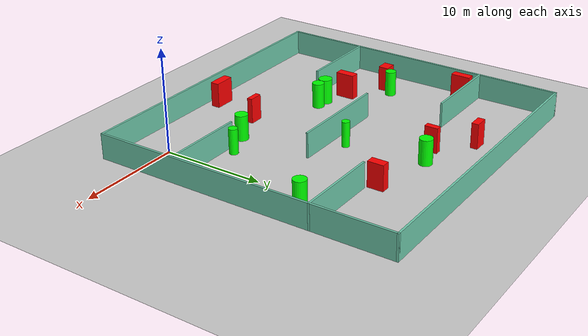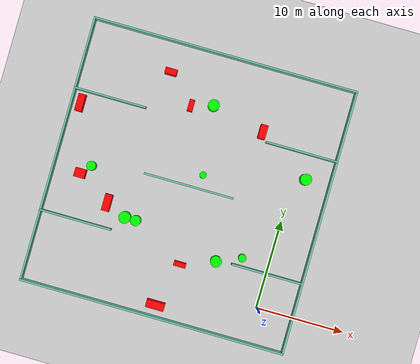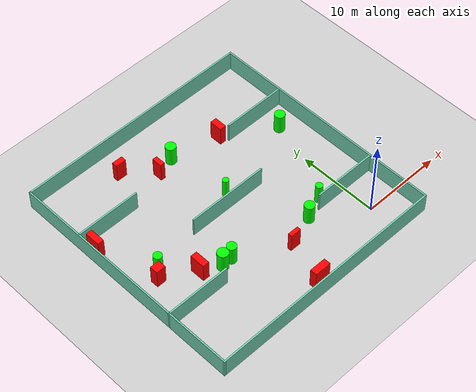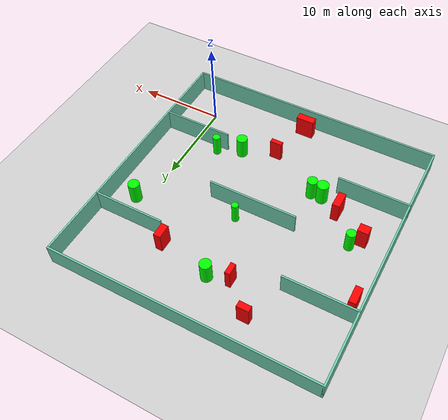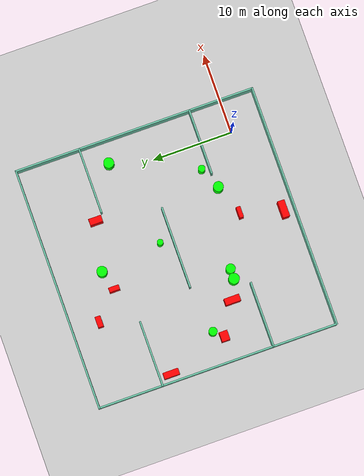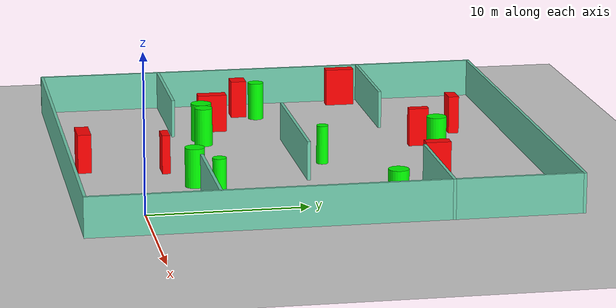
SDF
<sdf version="1.7">
 <world name="default">
  <light name="sun" type="directional">
   <pose>0 0 10 0 -0 0</pose>
   <diffuse>0.8 0.8 0.8 1</diffuse>
   <specular>0.2 0.2 0.2 1</specular>
   <attenuation>
    <range>1000</range>
    <constant>0.9</constant>
    <linear>0.01</linear>
    <quadratic>0.001</quadratic>
   </attenuation>
   <direction>-0.5 0.1 -0.9</direction>
   <spot><inner_angle>0</inner_angle><outer_angle>0</outer_angle><falloff>0</falloff></spot>
  </light>
  <model name="ground_plane">
   <static>1</static>
   <link name="link">
    <collision name="collision">
     <geometry><plane><normal>0 0 1</normal><size>100 100</size></plane></geometry>
     <surface>
      <contact><collide_bitmask>65535</collide_bitmask></contact>
      <friction><ode><mu>100</mu><mu2>50</mu2></ode></friction>
     </surface>
    </collision>
    <visual name="visual">
     <cast_shadows>0</cast_shadows>
     <geometry><plane><normal>0 0 1</normal><size>100 100</size></plane></geometry>
     <material>
      <script><uri>file://media/materials/scripts/gazebo.material</uri><name>Gazebo/Grey</name></script>
     </material>
    </visual>
   </link>
  </model>
  <gravity>0 0 -9.8</gravity>
  <magnetic_field>6e-06 2.3e-05 -4.2e-05</magnetic_field>
  <atmosphere type="adiabatic"/>
  <physics type="ode">
   <max_step_size>0.001</max_step_size>
   <real_time_factor>1</real_time_factor>
   <real_time_update_rate>1000</real_time_update_rate>
  </physics>
  <scene><ambient>0.4 0.4 0.4 1</ambient><background>0.7 0.7 0.7 1</background><shadows>1</shadows></scene>
  <spherical_coordinates>
   <surface_model>EARTH_WGS84</surface_model>
   <latitude_deg>0</latitude_deg>
   <longitude_deg>0</longitude_deg>
   <elevation>0</elevation>
   <heading_deg>0</heading_deg>
  </spherical_coordinates>
  <model name="my_base_walls">
   <link name="Wall_10">
    <collision name="Wall_10_Collision">
     <geometry><box><size>8.2 0.2 2.5</size></box></geometry>
     <pose>0 0 1.25 0 -0 0</pose>
    </collision>
    <visual name="Wall_10_Visual">
     <pose>0 0 1.25 0 -0 0</pose>
     <geometry><box><size>8.2 0.2 2.5</size></box></geometry>
     <material>
      <script><uri>file://media/materials/scripts/gazebo.material</uri><name>Gazebo/Grey</name></script>
      <ambient>0.435294 0.796078 0.67451 1</ambient>
     </material>
     <meta><layer>0</layer></meta>
    </visual>
    <pose>-11 -7 0 0 -0 0</pose>
   </link>
   <link name="Wall_12">
    <collision name="Wall_12_Collision">
     <geometry><box><size>8.2 0.2 2.5</size></box></geometry>
     <pose>0 0 1.25 0 -0 0</pose>
    </collision>
    <visual name="Wall_12_Visual">
     <pose>0 0 1.25 0 -0 0</pose>
     <geometry><box><size>8.2 0.2 2.5</size></box></geometry>
     <material>
      <script><uri>file://media/materials/scripts/gazebo.material</uri><name>Gazebo/Grey</name></script>
      <ambient>0.435294 0.796078 0.67451 1</ambient>
     </material>
     <meta><layer>0</layer></meta>
    </visual>
    <pose>-11 7 0 0 -0 0</pose>
   </link>
   <link name="Wall_14">
    <collision name="Wall_14_Collision">
     <geometry><box><size>8.2 0.2 2.5</size></box></geometry>
     <pose>0 0 1.25 0 -0 0</pose>
    </collision>
    <visual name="Wall_14_Visual">
     <pose>0 0 1.25 0 -0 0</pose>
     <geometry><box><size>8.2 0.2 2.5</size></box></geometry>
     <material>
      <script><uri>file://media/materials/scripts/gazebo.material</uri><name>Gazebo/Grey</name></script>
      <ambient>0.435294 0.796078 0.67451 1</ambient>
     </material>
     <meta><layer>0</layer></meta>
    </visual>
    <pose>11 7 0 0 -0 3.14159</pose>
   </link>
   <link name="Wall_16">
    <collision name="Wall_16_Collision">
     <geometry><box><size>10.2 0.2 2.5</size></box></geometry>
     <pose>0 0 1.25 0 -0 0</pose>
    </collision>
    <visual name="Wall_16_Visual">
     <pose>0 0 1.25 0 -0 0</pose>
     <geometry><box><size>10.2 0.2 2.5</size></box></geometry>
     <material>
      <script><uri>file://media/materials/scripts/gazebo.material</uri><name>Gazebo/Grey</name></script>
      <ambient>0.435294 0.796078 0.67451 1</ambient>
     </material>
     <meta><layer>0</layer></meta>
    </visual>
    <pose>0 0 0 0 -0 3.14159</pose>
   </link>
   <link name="Wall_2">
    <collision name="Wall_2_Collision">
     <geometry><box><size>30.2 0.2 2.5</size></box></geometry>
     <pose>0 0 1.25 0 -0 0</pose>
    </collision>
    <visual name="Wall_2_Visual">
     <pose>0 0 1.25 0 -0 0</pose>
     <geometry><box><size>30.2 0.2 2.5</size></box></geometry>
     <material>
      <script><uri>file://media/materials/scripts/gazebo.material</uri><name>Gazebo/Grey</name></script>
      <ambient>0.435294 0.796078 0.67451 1</ambient>
     </material>
     <meta><layer>0</layer></meta>
    </visual>
    <pose>0 -15 0 0 -0 3.14159</pose>
   </link>
   <link name="Wall_3">
    <collision name="Wall_3_Collision">
     <geometry><box><size>30.2 0.2 2.5</size></box></geometry>
     <pose>0 0 1.25 0 -0 0</pose>
    </collision>
    <visual name="Wall_3_Visual">
     <pose>0 0 1.25 0 -0 0</pose>
     <geometry><box><size>30.2 0.2 2.5</size></box></geometry>
     <material>
      <script><uri>file://media/materials/scripts/gazebo.material</uri><name>Gazebo/Grey</name></script>
      <ambient>0.435294 0.796078 0.67451 1</ambient>
     </material>
     <meta><layer>0</layer></meta>
    </visual>
    <pose>-15 0 0 0 -0 1.5708</pose>
   </link>
   <link name="Wall_4">
    <collision name="Wall_4_Collision">
     <geometry><box><size>30.2 0.2 2.5</size></box></geometry>
     <pose>0 0 1.25 0 -0 0</pose>
    </collision>
    <visual name="Wall_4_Visual">
     <pose>0 0 1.25 0 -0 0</pose>
     <geometry><box><size>30.2 0.2 2.5</size></box></geometry>
     <material>
      <script><uri>file://media/materials/scripts/gazebo.material</uri><name>Gazebo/Grey</name></script>
      <ambient>0.435294 0.796078 0.67451 1</ambient>
     </material>
     <meta><layer>0</layer></meta>
    </visual>
    <pose>0 15 0 0 -0 0</pose>
   </link>
   <link name="Wall_6">
    <collision name="Wall_6_Collision">
     <geometry><box><size>30.2 0.2 2.5</size></box></geometry>
     <pose>0 0 1.25 0 -0 0</pose>
    </collision>
    <visual name="Wall_6_Visual">
     <pose>0 0 1.25 0 -0 0</pose>
     <geometry><box><size>30.2 0.2 2.5</size></box></geometry>
     <material>
      <script><uri>file://media/materials/scripts/gazebo.material</uri><name>Gazebo/Grey</name></script>
      <ambient>0.435294 0.796078 0.67451 1</ambient>
     </material>
     <meta><layer>0</layer></meta>
    </visual>
    <pose>15 0 0 0 -0 1.5708</pose>
   </link>
   <link name="Wall_8">
    <collision name="Wall_8_Collision">
     <geometry><box><size>8.2 0.2 2.5</size></box></geometry>
     <pose>0 0 1.25 0 -0 0</pose>
    </collision>
    <visual name="Wall_8_Visual">
     <pose>0 0 1.25 0 -0 0</pose>
     <geometry><box><size>8.2 0.2 2.5</size></box></geometry>
     <material>
      <script><uri>file://media/materials/scripts/gazebo.material</uri><name>Gazebo/Grey</name></script>
      <ambient>0.435294 0.796078 0.67451 1</ambient>
     </material>
     <meta><layer>0</layer></meta>
    </visual>
    <pose>11 -7 0 0 -0 3.14159</pose>
   </link>
   <static>1</static>
   <pose>-11 11 0 0 -0 0</pose>
  </model>
  <model name="cylinder1">
   <static>1</static>
   <link name="link">
    <inertial>
     <mass>1</mass>
     <inertia><ixx>0.5</ixx><ixy>0</ixy><ixz>0</ixz><iyy>0.5</iyy><iyz>0</iyz><izz>1</izz></inertia>
    </inertial>
    <collision name="collision">
     <geometry><cylinder><radius>0.5865033481132116</radius><length>2.5</length></cylinder></geometry>
    </collision>
    <visual name="visual">
     <geometry><cylinder><radius>0.5865033481132116</radius><length>2.5</length></cylinder></geometry>
     <material>
      <ambient>0 1 0 1</ambient>
      <diffuse>0 1 0 1</diffuse>
      <specular>0.1 0.1 0.1 1</specular>
      <emissive>0 0 0 0</emissive>
     </material>
    </visual>
   </link>
   <pose>-15.5757274176353 5.711006452326119 1.25 0 0 0</pose>
  </model>
  <model name="cylinder2">
   <static>1</static>
   <link name="link">
    <inertial>
     <mass>1</mass>
     <inertia><ixx>0.5</ixx><ixy>0</ixy><ixz>0</ixz><iyy>0.5</iyy><iyz>0</iyz><izz>1</izz></inertia>
    </inertial>
    <collision name="collision">
     <geometry><cylinder><radius>0.6225831511456474</radius><length>2.5</length></cylinder></geometry>
    </collision>
    <visual name="visual">
     <geometry><cylinder><radius>0.6225831511456474</radius><length>2.5</length></cylinder></geometry>
     <material>
      <ambient>0 1 0 1</ambient>
      <diffuse>0 1 0 1</diffuse>
      <specular>0.1 0.1 0.1 1</specular>
      <emissive>0 0 0 0</emissive>
     </material>
    </visual>
   </link>
   <pose>-5.8222367702156514 3.790030629953735 1.25 0 0 0</pose>
  </model>
  <model name="cylinder3">
   <static>1</static>
   <link name="link">
    <inertial>
     <mass>1</mass>
     <inertia><ixx>0.5</ixx><ixy>0</ixy><ixz>0</ixz><iyy>0.5</iyy><iyz>0</iyz><izz>1</izz></inertia>
    </inertial>
    <collision name="collision">
     <geometry><cylinder><radius>0.3831619722029748</radius><length>2.5</length></cylinder></geometry>
    </collision>
    <visual name="visual">
     <geometry><cylinder><radius>0.3831619722029748</radius><length>2.5</length></cylinder></geometry>
     <material>
      <ambient>0 1 0 1</ambient>
      <diffuse>0 1 0 1</diffuse>
      <specular>0.1 0.1 0.1 1</specular>
      <emissive>0 0 0 0</emissive>
     </material>
    </visual>
   </link>
   <pose>-9.792727639151352 12.577685271970916 1.25 0 0 0</pose>
  </model>
  <model name="cylinder4">
   <static>1</static>
   <link name="link">
    <inertial>
     <mass>1</mass>
     <inertia><ixx>0.5</ixx><ixy>0</ixy><ixz>0</ixz><iyy>0.5</iyy><iyz>0</iyz><izz>1</izz></inertia>
    </inertial>
    <collision name="collision">
     <geometry><cylinder><radius>0.4364645500789421</radius><length>2.5</length></cylinder></geometry>
    </collision>
    <visual name="visual">
     <geometry><cylinder><radius>0.4364645500789421</radius><length>2.5</length></cylinder></geometry>
     <material>
      <ambient>0 1 0 1</ambient>
      <diffuse>0 1 0 1</diffuse>
      <specular>0.1 0.1 0.1 1</specular>
      <emissive>0 0 0 0</emissive>
     </material>
    </visual>
   </link>
   <pose>-3.1225774206794092 4.944608333739824 1.25 0 0 0</pose>
  </model>
  <model name="cylinder5">
   <static>1</static>
   <link name="link">
    <inertial>
     <mass>1</mass>
     <inertia><ixx>0.5</ixx><ixy>0</ixy><ixz>0</ixz><iyy>0.5</iyy><iyz>0</iyz><izz>1</izz></inertia>
    </inertial>
    <collision name="collision">
     <geometry><cylinder><radius>0.5234366289752593</radius><length>2.5</length></cylinder></geometry>
    </collision>
    <visual name="visual">
     <geometry><cylinder><radius>0.5234366289752593</radius><length>2.5</length></cylinder></geometry>
     <material>
      <ambient>0 1 0 1</ambient>
      <diffuse>0 1 0 1</diffuse>
      <specular>0.1 0.1 0.1 1</specular>
      <emissive>0 0 0 0</emissive>
     </material>
    </visual>
   </link>
   <pose>-21.929374619548707 10.193350820662557 1.25 0 0 0</pose>
  </model>
  <model name="cylinder6">
   <static>1</static>
   <link name="link">
    <inertial>
     <mass>1</mass>
     <inertia><ixx>0.5</ixx><ixy>0</ixy><ixz>0</ixz><iyy>0.5</iyy><iyz>0</iyz><izz>1</izz></inertia>
    </inertial>
    <collision name="collision">
     <geometry><cylinder><radius>0.6375693553593063</radius><length>2.5</length></cylinder></geometry>
    </collision>
    <visual name="visual">
     <geometry><cylinder><radius>0.6375693553593063</radius><length>2.5</length></cylinder></geometry>
     <material>
      <ambient>0 1 0 1</ambient>
      <diffuse>0 1 0 1</diffuse>
      <specular>0.1 0.1 0.1 1</specular>
      <emissive>0 0 0 0</emissive>
     </material>
    </visual>
   </link>
   <pose>1.2346790834156067 15.202143140613096 1.25 0 0 0</pose>
  </model>
  <model name="cylinder7">
   <static>1</static>
   <link name="link">
    <inertial>
     <mass>1</mass>
     <inertia><ixx>0.5</ixx><ixy>0</ixy><ixz>0</ixz><iyy>0.5</iyy><iyz>0</iyz><izz>1</izz></inertia>
    </inertial>
    <collision name="collision">
     <geometry><cylinder><radius>0.6702024659114576</radius><length>2.5</length></cylinder></geometry>
    </collision>
    <visual name="visual">
     <geometry><cylinder><radius>0.6702024659114576</radius><length>2.5</length></cylinder></geometry>
     <material>
      <ambient>0 1 0 1</ambient>
      <diffuse>0 1 0 1</diffuse>
      <specular>0.1 0.1 0.1 1</specular>
      <emissive>0 0 0 0</emissive>
     </material>
    </visual>
   </link>
   <pose>-16.834324679467997 5.725551864552546 1.25 0 0 0</pose>
  </model>
  <model name="cylinder8">
   <static>1</static>
   <link name="link">
    <inertial>
     <mass>1</mass>
     <inertia><ixx>0.5</ixx><ixy>0</ixy><ixz>0</ixz><iyy>0.5</iyy><iyz>0</iyz><izz>1</izz></inertia>
    </inertial>
    <collision name="collision">
     <geometry><cylinder><radius>0.6429388727821796</radius><length>2.5</length></cylinder></geometry>
    </collision>
    <visual name="visual">
     <geometry><cylinder><radius>0.6429388727821796</radius><length>2.5</length></cylinder></geometry>
     <material>
      <ambient>0 1 0 1</ambient>
      <diffuse>0 1 0 1</diffuse>
      <specular>0.1 0.1 0.1 1</specular>
      <emissive>0 0 0 0</emissive>
     </material>
    </visual>
   </link>
   <pose>-10.768863757272973 20.286422576249876 1.25 0 0 0</pose>
  </model>
  <model name="box1">
   <static>1</static>
   <link name="link">
    <inertial>
     <mass>1</mass>
     <inertia><ixx>0.083</ixx><ixy>0</ixy><ixz>0</ixz><iyy>0.083</iyy><iyz>0</iyz><izz>0.083</izz></inertia>
    </inertial>
    <collision name="collision">
     <geometry><box><size>1.3602921274935795 0.5163581120652012 2.5</size></box></geometry>
    </collision>
    <visual name="visual">
     <geometry><box><size>1.3602921274935795 0.5163581120652012 2.5</size></box></geometry>
     <material>
      <ambient>1 0 0 1</ambient>
      <diffuse>1 0 0 1</diffuse>
      <specular>0.1 0.1 0.1 1</specular>
      <emissive>0 0 0 0</emissive>
     </material>
    </visual>
    <sensor name="my_contact" type="contact">
     <contact><collision>box_collision</collision><topic>__default_topic__</topic></contact>
    </sensor>
   </link>
   <pose>-9.563482042213739 2.3945546065087084 1.25 0 0 0</pose>
  </model>
  <model name="box2">
   <static>1</static>
   <link name="link">
    <inertial>
     <mass>1</mass>
     <inertia><ixx>0.083</ixx><ixy>0</ixy><ixz>0</ixz><iyy>0.083</iyy><iyz>0</iyz><izz>0.083</izz></inertia>
    </inertial>
    <collision name="collision">
     <geometry><box><size>0.7793414867557549 1.9297095038972287 2.5</size></box></geometry>
    </collision>
    <visual name="visual">
     <geometry><box><size>0.7793414867557549 1.9297095038972287 2.5</size></box></geometry>
     <material>
      <ambient>1 0 0 1</ambient>
      <diffuse>1 0 0 1</diffuse>
      <specular>0.1 0.1 0.1 1</specular>
      <emissive>0 0 0 0</emissive>
     </material>
    </visual>
    <sensor name="my_contact" type="contact">
     <contact><collision>box_collision</collision><topic>__default_topic__</topic></contact>
    </sensor>
   </link>
   <pose>-25.009605754568984 16.55988865299106 1.25 0 0 0</pose>
  </model>
  <model name="box3">
   <static>1</static>
   <link name="link">
    <inertial>
     <mass>1</mass>
     <inertia><ixx>0.083</ixx><ixy>0</ixy><ixz>0</ixz><iyy>0.083</iyy><iyz>0</iyz><izz>0.083</izz></inertia>
    </inertial>
    <collision name="collision">
     <geometry><box><size>1.3377410425167107 0.6887136720744222 2.5</size></box></geometry>
    </collision>
    <visual name="visual">
     <geometry><box><size>1.3377410425167107 0.6887136720744222 2.5</size></box></geometry>
     <material>
      <ambient>1 0 0 1</ambient>
      <diffuse>1 0 0 1</diffuse>
      <specular>0.1 0.1 0.1 1</specular>
      <emissive>0 0 0 0</emissive>
     </material>
    </visual>
    <sensor name="my_contact" type="contact">
     <contact><collision>box_collision</collision><topic>__default_topic__</topic></contact>
    </sensor>
   </link>
   <pose>-16.31676980442792 22.58694227787945 1.25 0 0 0</pose>
  </model>
  <model name="box4">
   <static>1</static>
   <link name="link">
    <inertial>
     <mass>1</mass>
     <inertia><ixx>0.083</ixx><ixy>0</ixy><ixz>0</ixz><iyy>0.083</iyy><iyz>0</iyz><izz>0.083</izz></inertia>
    </inertial>
    <collision name="collision">
     <geometry><box><size>0.8336779063386694 1.9052416801666443 2.5</size></box></geometry>
    </collision>
    <visual name="visual">
     <geometry><box><size>0.8336779063386694 1.9052416801666443 2.5</size></box></geometry>
     <material>
      <ambient>1 0 0 1</ambient>
      <diffuse>1 0 0 1</diffuse>
      <specular>0.1 0.1 0.1 1</specular>
      <emissive>0 0 0 0</emissive>
     </material>
    </visual>
    <sensor name="my_contact" type="contact">
     <contact><collision>box_collision</collision><topic>__default_topic__</topic></contact>
    </sensor>
   </link>
   <pose>-19.145472603849292 6.760868381341986 1.25 0 0 0</pose>
  </model>
  <model name="box5">
   <static>1</static>
   <link name="link">
    <inertial>
     <mass>1</mass>
     <inertia><ixx>0.083</ixx><ixy>0</ixy><ixz>0</ixz><iyy>0.083</iyy><iyz>0</iyz><izz>0.083</izz></inertia>
    </inertial>
    <collision name="collision">
     <geometry><box><size>0.5842914218962312 1.3073466898442438 2.5</size></box></geometry>
    </collision>
    <visual name="visual">
     <geometry><box><size>0.5842914218962312 1.3073466898442438 2.5</size></box></geometry>
     <material>
      <ambient>1 0 0 1</ambient>
      <diffuse>1 0 0 1</diffuse>
      <specular>0.1 0.1 0.1 1</specular>
      <emissive>0 0 0 0</emissive>
     </material>
    </visual>
    <sensor name="my_contact" type="contact">
     <contact><collision>box_collision</collision><topic>__default_topic__</topic></contact>
    </sensor>
   </link>
   <pose>-13.18603585628265 19.60017774333397 1.25 0 0 0</pose>
  </model>
  <model name="box6">
   <static>1</static>
   <link name="link">
    <inertial>
     <mass>1</mass>
     <inertia><ixx>0.083</ixx><ixy>0</ixy><ixz>0</ixz><iyy>0.083</iyy><iyz>0</iyz><izz>0.083</izz></inertia>
    </inertial>
    <collision name="collision">
     <geometry><box><size>0.8137018926552015 1.5882526361555416 2.5</size></box></geometry>
    </collision>
    <visual name="visual">
     <geometry><box><size>0.8137018926552015 1.5882526361555416 2.5</size></box></geometry>
     <material>
      <ambient>1 0 0 1</ambient>
      <diffuse>1 0 0 1</diffuse>
      <specular>0.1 0.1 0.1 1</specular>
      <emissive>0 0 0 0</emissive>
     </material>
    </visual>
    <sensor name="my_contact" type="contact">
     <contact><collision>box_collision</collision><topic>__default_topic__</topic></contact>
    </sensor>
   </link>
   <pose>-4.749376948810966 18.968332095323905 1.25 0 0 0</pose>
  </model>
  <model name="box7">
   <static>1</static>
   <link name="link">
    <inertial>
     <mass>1</mass>
     <inertia><ixx>0.083</ixx><ixy>0</ixy><ixz>0</ixz><iyy>0.083</iyy><iyz>0</iyz><izz>0.083</izz></inertia>
    </inertial>
    <collision name="collision">
     <geometry><box><size>2.081828656337451 0.8669000350687392 2.5</size></box></geometry>
    </collision>
    <visual name="visual">
     <geometry><box><size>2.081828656337451 0.8669000350687392 2.5</size></box></geometry>
     <material>
      <ambient>1 0 0 1</ambient>
      <diffuse>1 0 0 1</diffuse>
      <specular>0.1 0.1 0.1 1</specular>
      <emissive>0 0 0 0</emissive>
     </material>
    </visual>
    <sensor name="my_contact" type="contact">
     <contact><collision>box_collision</collision><topic>__default_topic__</topic></contact>
    </sensor>
   </link>
   <pose>-10.941175977716215 -2.667375242234392 1.25 0 0 0</pose>
  </model>
  <model name="box8">
   <static>1</static>
   <link name="link">
    <inertial>
     <mass>1</mass>
     <inertia><ixx>0.083</ixx><ixy>0</ixy><ixz>0</ixz><iyy>0.083</iyy><iyz>0</iyz><izz>0.083</izz></inertia>
    </inertial>
    <collision name="collision">
     <geometry><box><size>1.2044045181198917 1.0178545985347611 2.5</size></box></geometry>
    </collision>
    <visual name="visual">
     <geometry><box><size>1.2044045181198917 1.0178545985347611 2.5</size></box></geometry>
     <material>
      <ambient>1 0 0 1</ambient>
      <diffuse>1 0 0 1</diffuse>
      <specular>0.1 0.1 0.1 1</specular>
      <emissive>0 0 0 0</emissive>
     </material>
    </visual>
    <sensor name="my_contact" type="contact">
     <contact><collision>box_collision</collision><topic>__default_topic__</topic></contact>
    </sensor>
   </link>
   <pose>-22.912033582115445 9.084323165363957 1.25 0 0 0</pose>
  </model>
 </world>
</sdf>
